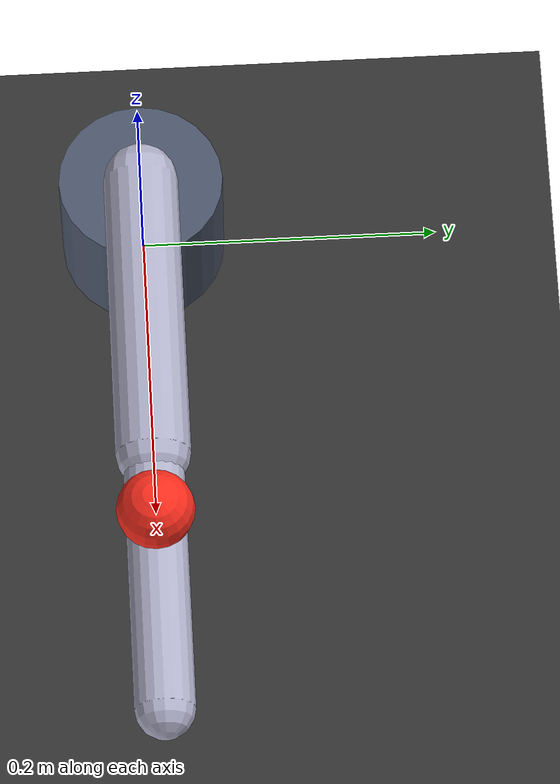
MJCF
<mujoco model="orbit_arm">
  <compiler angle="radian" coordinate="local"/>
  <option timestep="0.002" gravity="0 0 -9.81"/>

  <default>
    <joint damping="2.0" armature="0.025" limited="true"/>
    <geom rgba="0.7 0.7 0.8 1" friction="1 0.5 0.5"/>
  </default>

  <worldbody>
    <light pos="0 0 2" dir="0 0 -1"/>
    <geom name="floor" type="plane" size="1 1 0.05" rgba="0.2 0.2 0.2 1"/>

    <body name="target" mocap="true" pos="0.30 0 0.24">
      <geom name="target_geom" type="sphere" size="0.025"
            rgba="1 0.18 0.12 0.9" contype="0" conaffinity="0"/>
    </body>

    <body name="base" pos="0 0 0.05">
      <joint name="base_yaw" type="hinge" axis="0 0 1" range="-3.14159 3.14159"/>
      <geom name="base_geom" type="cylinder" size="0.055 0.05"
            rgba="0.3 0.34 0.42 1"/>
      <body name="link1" pos="0 0 0.05">
        <joint name="shoulder" type="hinge" axis="0 1 0" range="-1.57 1.57"/>
        <geom name="link1_geom" type="capsule" fromto="0 0 0 0.2 0 0"
              size="0.025"/>
        <body name="link2" pos="0.2 0 0">
          <joint name="elbow" type="hinge" axis="0 1 0" range="-2.5 2.5"/>
          <geom name="link2_geom" type="capsule" fromto="0 0 0 0.18 0 0"
                size="0.02"/>
          <site name="ee_site" pos="0.18 0 0" size="0.018"
                rgba="0.1 0.9 0.3 1"/>
        </body>
      </body>
    </body>
  </worldbody>

  <actuator>
    <position name="base_yaw_act" joint="base_yaw" kp="80"
              ctrlrange="-3.14159 3.14159"/>
    <position name="shoulder_act" joint="shoulder" kp="60"
              ctrlrange="-1.57 1.57"/>
    <position name="elbow_act" joint="elbow" kp="40"
              ctrlrange="-2.5 2.5"/>
  </actuator>
</mujoco>
